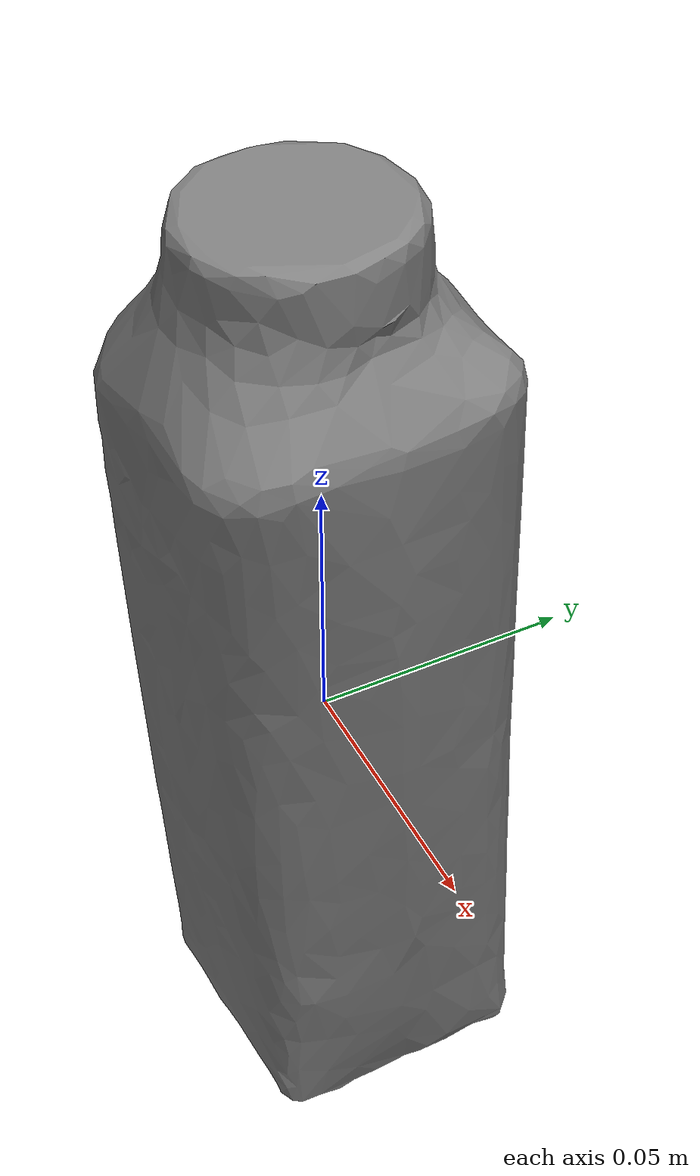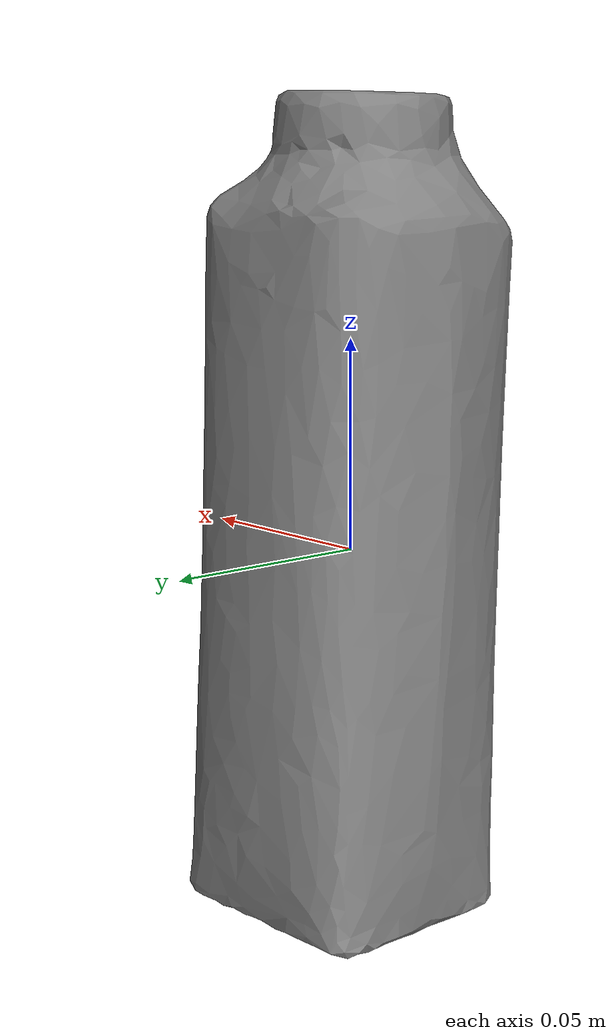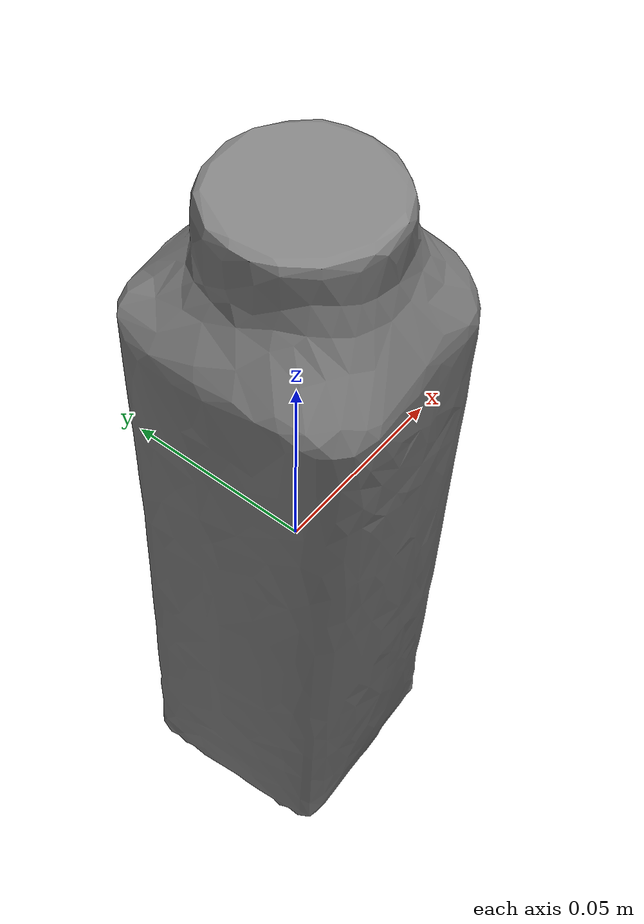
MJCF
<?xml version="1.0" ?>
<mujoco model="milk">
	<compiler meshdir="milk/meshes" texturedir="milk/textures" angle="radian" autolimits="true"/>
	<default>
		<default class="milk_visual">
			<geom contype="0" conaffinity="0"/>
		</default>
		<default class="milk_collision">
			<geom rgba="1 1 1 0" friction="0.7" solimp="0.95 0.99 0.001" solref="0.004 1"/>
		</default>
	</default>
	<asset>
		<mesh name="milk" file="stl/milk.stl" scale="1.0 1.0 1.0"/>
	</asset>
	<worldbody>
		<body name="milk" pos="0.0 0.0 0.0" quat="1.0 0.0 0.0 0.0">
			<inertial mass="0.5931721925735474" pos="-0.0002407325227977708 0.00019318319391459227 0.004190846811980009" quat="-0.6914591193199158 0.1289946585893631 0.6945163607597351 0.15129996836185455" diaginertia="0.00030648973188363016 0.001739033730700612 0.0017434534383937716"/>
			<freejoint/>
			<geom name="SM_milk_mesh_0" type="mesh" pos="0.0 0.0 0.0" quat="1.0 0.0 0.0 0.0" mesh="milk" class="milk_visual" />
			<geom name="SM_milk_box_1" type="box" size="0.03 0.03 0.01" pos="0.0 0.0 -0.08" quat="1.0 0.0 0.0 0.0" class="milk_collision" />
			<geom name="SM_milk_cylinder_2" type="cylinder" size="0.03 0.08" pos="0.0 0.0 0.0" quat="1.0 0.0 0.0 0.0" class="milk_collision" />
		</body>
	</worldbody>
	<equality/>
</mujoco>
